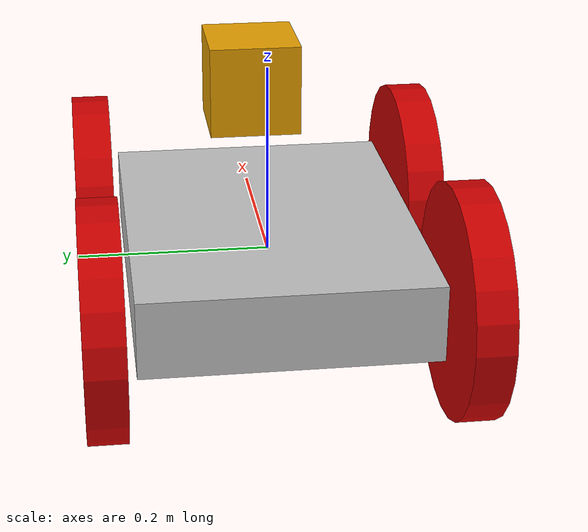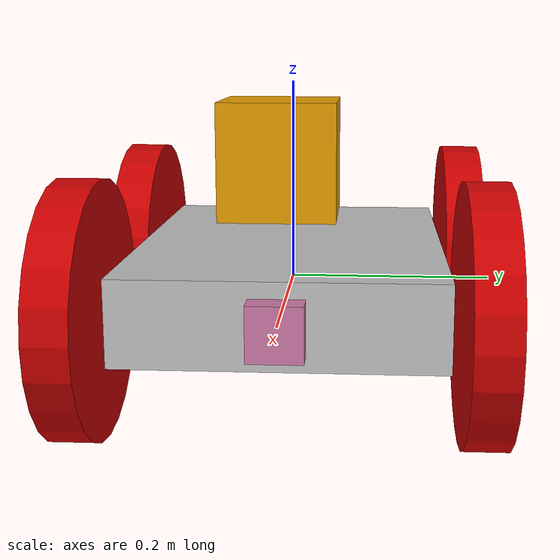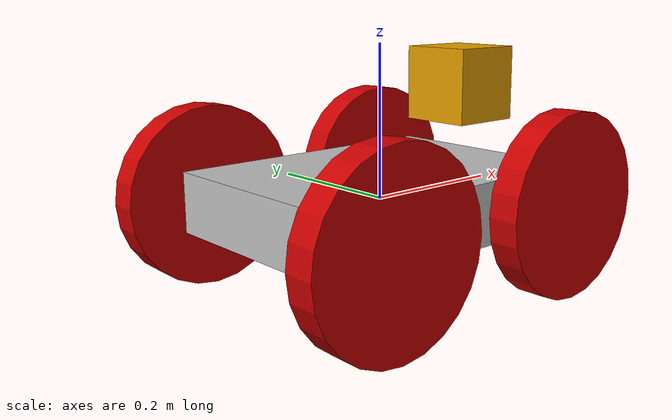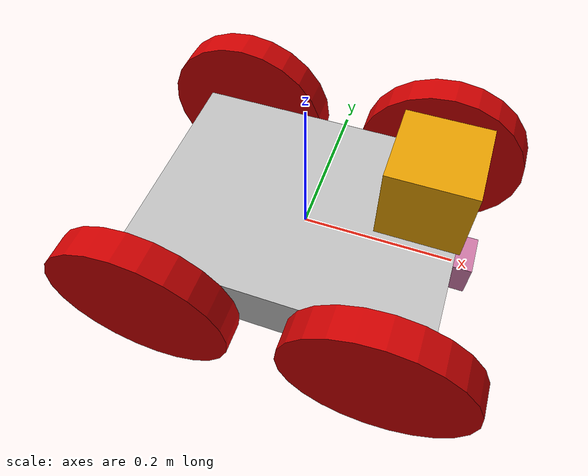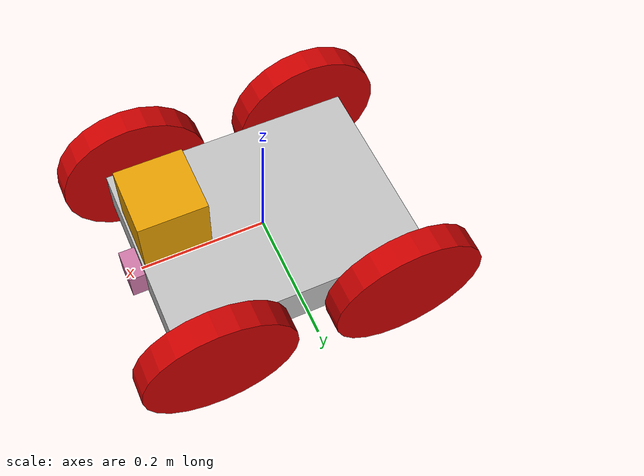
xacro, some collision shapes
<?xml version='1.0'?>

<robot name="my_robot" xmlns:xacro="http://www.ros.org/wiki/xacro">

  <material name="dark_red">
	<color rgba="0.8 0 0.0 1"/>
  </material>

  <material name="grey">
	<color rgba="0.75 0.75 0.75 1"/>
  </material>

  <xacro:include filename="$(find home_service_robot)/urdf/my_robot.gazebo" />
  <link name="robot_footprint"></link>

  <joint name="robot_footprint_joint" type="fixed">
    <origin xyz="0 0 0" rpy="0 0 0" />
    <parent link="robot_footprint"/>
    <child link="chassis" />
  </joint>

  <link name='chassis'>
    <pose>0 0 0.1 0 0 0</pose>

    <inertial>
      <mass value="5.0"/>
      <origin xyz="0.0 0 0" rpy=" 0 0 0"/>
      <inertia
          ixx="0.1" ixy="0" ixz="0"
          iyy="0.1" iyz="0"
          izz="0.1"
      />
    </inertial>

    <collision name='collision'>
      <origin xyz="0 0 0" rpy=" 0 0 0"/>
      <geometry>
        <box size=".4 .3 .08"/>
      </geometry>
    </collision>

    <visual name='chassis_visual'>
      <origin xyz="0 0 0" rpy=" 0 0 0"/>
      <geometry>
        <box size=".4 .3 .08"/>
      </geometry>
      <material name="grey"/>
    </visual>

  </link>

  <link name='front_left_wheel'>
    <commandTopic>cmd_vel</commandTopic>
    <inertial>
      <mass value="4.0"/>
      <origin xyz="0 0 0" rpy="0 1.5707 1.5707"/>
      <inertia
          ixx="0.1" ixy="0" ixz="0"
          iyy="0.1" iyz="0"
          izz="0.1"
      />
    </inertial>

    <collision name='collision'>
      <origin xyz="0 0 0" rpy="0 1.5707 1.5707"/>
      <geometry>
        <cylinder radius="0.12" length="0.04"/>
      </geometry>
    </collision>

    <visual name='visual'>
      <origin xyz="0 0 0" rpy=" 0 1.5707 1.5707"/>
      <geometry>
        <cylinder radius="0.12" length="0.04"/>
      </geometry>
      <material name="dark_red"/>
    </visual>
  </link>

  <link name='front_right_wheel'>
    <commandTopic>cmd_vel</commandTopic>
    <inertial>
      <mass value="5.0"/>
      <origin xyz="0 0 0" rpy="0 1.5707 1.5707"/>
      <inertia
          ixx="0.1" ixy="0" ixz="0"
          iyy="0.1" iyz="0"
          izz="0.1"
      />
    </inertial>

    <collision name='collision'>
      <origin xyz="0 0 0" rpy="0 1.5707 1.5707"/>
      <geometry>
        <cylinder radius="0.12" length="0.04"/>
      </geometry>
    </collision>

    <visual name='visual'>
      <origin xyz="0 0 0" rpy=" 0 1.5707 1.5707"/>
      <geometry>
        <cylinder radius="0.12" length="0.04"/>
      </geometry>
      <material name="dark_red"/>
    </visual>
  </link>

  <link name='back_left_wheel'>
    <commandTopic>cmd_vel</commandTopic>
    <inertial>
      <mass value="4.0"/>
      <origin xyz="0 0 0" rpy="0 1.5707 1.5707"/>
      <inertia
          ixx="0.1" ixy="0" ixz="0"
          iyy="0.1" iyz="0"
          izz="0.1"
      />
    </inertial>

    <collision name='collision'>
      <origin xyz="0 0 0" rpy="0 1.5707 1.5707"/>
      <geometry>
        <cylinder radius="0.12" length="0.04"/>
      </geometry>
    </collision>

    <visual name='visual'>
      <origin xyz="0 0 0" rpy=" 0 1.5707 1.5707"/>
      <geometry>
        <cylinder radius="0.12" length="0.04"/>
      </geometry>
      <material name="dark_red"/>
    </visual>
  </link>

  <link name='back_right_wheel'>
    <commandTopic>cmd_vel</commandTopic>
    <inertial>
      <mass value="5.0"/>
      <origin xyz="0 0 0" rpy="0 1.5707 1.5707"/>
      <inertia
          ixx="0.1" ixy="0" ixz="0"
          iyy="0.1" iyz="0"
          izz="0.1"
      />
    </inertial>

    <collision name='collision'>
      <origin xyz="0 0 0" rpy="0 1.5707 1.5707"/>
      <geometry>
        <cylinder radius="0.12" length="0.04"/>
      </geometry>
    </collision>

    <visual name='visual'>
      <origin xyz="0 0 0" rpy=" 0 1.5707 1.5707"/>
      <geometry>
        <cylinder radius="0.12" length="0.04"/>
      </geometry>
      <material name="dark_red"/>
    </visual>
  </link>

  <link name='camera'>
    <imageTopicName>rgb/image_raw</imageTopicName>
    <inertial>
      <mass value="0.1"/>
      <origin xyz="0 0 0" rpy="0 0 0"/>
      <inertia
          ixx="1e-6" ixy="0" ixz="0"
          iyy="1e-6" iyz="0"
          izz="1e-6"
      />
      <box_inertia
          mass="0.1"
	  x="0.05"
          y="0.05"
          z="0.05"
      />
    </inertial>

    <collision name='collision'>
      <origin xyz="0 0 0" rpy="0 0 0"/>
      <geometry>
        <box size=".05 .05 .05"/>
      </geometry>
    </collision>

    <visual name='visual'>
      <origin xyz="0 0 0" rpy="0 0 0"/>
      <geometry>
        <box size=".05 .05 .05"/>
      </geometry>
    </visual>
  </link>

  <link name="camera_link_optical"></link>

  <link name='hokuyo'>
    <topicName>/scan</topicName>
    <inertial>
      <mass value="1e-5"/>
      <origin xyz="0 0 0.0" rpy="0 0 0"/>
      <inertia
          ixx="1e-6" ixy="0" ixz="0"
          iyy="1e-6" iyz="0"
          izz="1e-6"
      />
    </inertial>

    <collision name='collision'>
      <origin xyz="0 0 0.0" rpy="0 0 0"/>
      <geometry>
        <box size=".1 .1 .1"/>
      </geometry>
    </collision>

    <visual name='visual'>
      <origin xyz="0 0 0.0" rpy="0 0 0"/>
      <geometry>
        <mesh filename="package://home_service_robot/meshes/hokuyo.dae"/>
      </geometry>
    </visual>
  </link>

  <joint type="continuous" name="front_left_wheel_joint">
    <origin xyz="0.15 0.18 0" rpy="0 0 0"/>
    <child link="front_left_wheel"/>
    <parent link="chassis"/>
    <axis xyz="0 1 0" rpy="0 0 0"/>
    <limit effort="10000" velocity="1000"/>
    <dynamics damping="1.0" friction="1.0"/>
  </joint>

  <joint type="continuous" name="front_right_wheel_joint">
    <origin xyz="0.15 -0.18 0" rpy="0 0 0"/>
    <child link="front_right_wheel"/>
    <parent link="chassis"/>
    <axis xyz="0 1 0" rpy="0 0 0"/>
    <limit effort="10000" velocity="1000"/>
    <dynamics damping="1.0" friction="1.0"/>
  </joint>

  <joint type="continuous" name="back_left_wheel_joint">
    <origin xyz="-0.15 0.18 0" rpy="0 0 0"/>
    <child link="back_left_wheel"/>
    <parent link="chassis"/>
    <axis xyz="0 1 0" rpy="0 0 0"/>
    <limit effort="10000" velocity="1000"/>
    <dynamics damping="1.0" friction="1.0"/>
  </joint>

  <joint type="continuous" name="back_right_wheel_joint">
    <origin xyz="-0.15 -0.18 0" rpy="0 0 0"/>
    <child link="back_right_wheel"/>
    <parent link="chassis"/>
    <axis xyz="0 1 0" rpy="0 0 0"/>
    <limit effort="10000" velocity="1000"/>
    <dynamics damping="1.0" friction="1.0"/>
  </joint>

  <joint type="fixed" name="camera_joint">
    <origin xyz="0.2 0 0" rpy="0 0 0"/>
    <child link="camera"/>
    <parent link="chassis"/>
    <axis xyz="0 1 0" rpy="0 0 0"/>
  </joint>

  <joint name="camera_optical_joint" type="fixed">
    <origin xyz="0 0 0" rpy="-1.5707 0 -1.5707"/>
    <parent link="camera"/>
    <child link="camera_link_optical"/>
  </joint>

  <joint type="fixed" name="hokuyo_joint">
    <origin xyz=".15 0 .14" rpy="0 0 0"/>
    <child link="hokuyo"/>
    <parent link="chassis"/>
    <axis xyz="0 1 0" rpy="0 0 0"/>
  </joint>

  <gazebo reference="left_wheel">
    <material>Gazebo/Red </material>
  </gazebo>

  <gazebo reference="right_wheel">
    <material>Gazebo/Red </material>
  </gazebo>

  <gazebo reference="chassis">
    <material>Gazebo/Green </material>
  </gazebo>

</robot>
